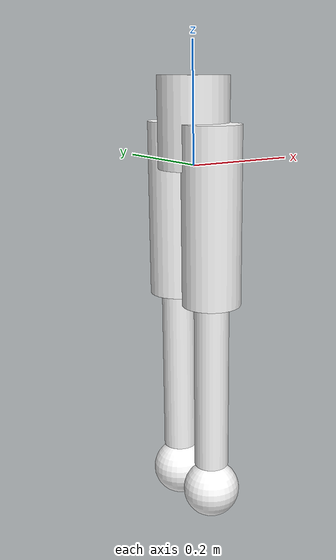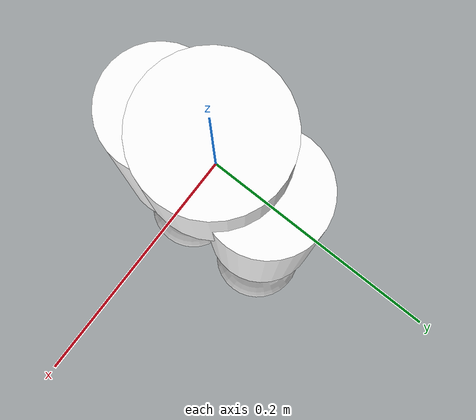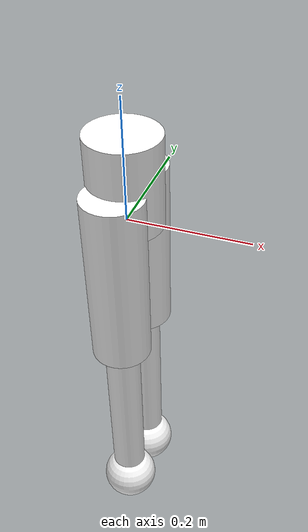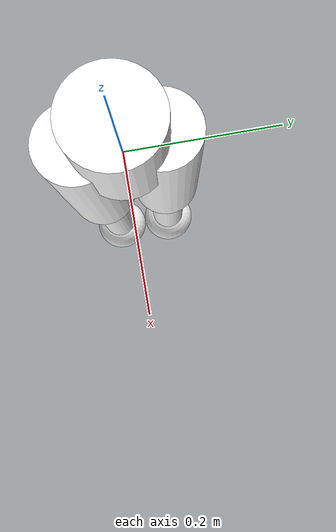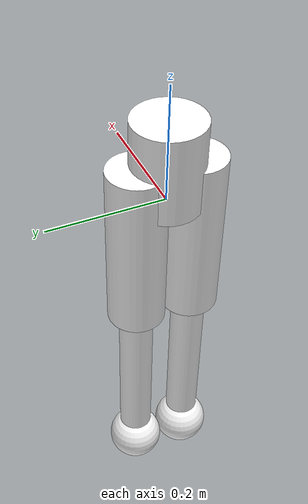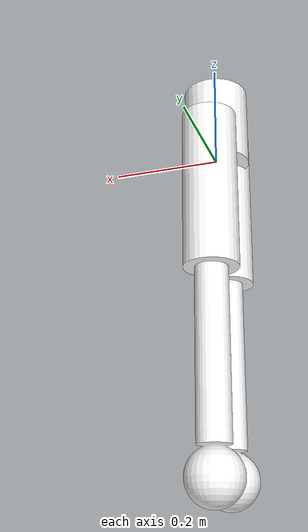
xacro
<?xml version="1.0" ?>
<robot name="moonbot01" xmlns:xacro="http://ros.org/wiki/xacro">

  <!-- include files -->
  <xacro:include filename="$(find moonbot_description)/urdf/yonaka/materials.xacro"/>
  <xacro:include filename="$(find moonbot_description)/urdf/yonaka/moonbot01_leg_macro.xacro"/>

  <link name="world"/>

  <joint name="world_to_f_left_base" type="fixed">
    <origin xyz="0 0 0" rpy="0 0 0"/>
    <parent link="world"/>
    <child link="f_left_leg_base_link"/>
  </joint>

  <xacro:moonbot01_leg prefix="f_left_"/>

  <joint name="world_to_f_right_base" type="fixed">
    <origin xyz="0 0 0" rpy="0 0 0"/>
    <parent link="world"/>
    <child link="f_right_leg_base_link"/>
  </joint>

  <xacro:moonbot01_leg prefix="f_right_"/>

  <joint name="world_to_b_left_base" type="fixed">
    <origin xyz="0 0 0" rpy="0 0 0"/>
    <parent link="world"/>
    <child link="b_left_leg_base_link"/>
  </joint>

  <xacro:moonbot01_leg prefix="b_left_"/>

  <joint name="world_to_b_right_base" type="fixed">
    <origin xyz="0 0 0" rpy="0 0 0"/>
    <parent link="world"/>
    <child link="b_right_leg_base_link"/>
  </joint>

  <xacro:moonbot01_leg prefix="b_right_"/>

</robot>

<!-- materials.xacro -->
<robot name="moonbot01" xmlns:xacro="http://ros.org/wiki/xacro">

  <!-- link rviz colors -->
  <material name="White">
    <color rgba="1 1 1 1"/>
  </material>

  <material name="Black">
    <color rgba="0 0 0 1"/>
  </material>

</robot>

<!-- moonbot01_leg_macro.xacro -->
<robot name="moonbot01" xmlns:xacro="http://ros.org/wiki/xacro">

  <xacro:macro name="moonbot01_leg" params="prefix">

    <!-- include files -->
    <xacro:include filename="$(find moonbot_description)/urdf/yonaka/common.xacro" />
    <xacro:include filename="$(find moonbot_description)/urdf/yonaka/common_gazebo.xacro" />

    <!-- joint limits [rad] -->
    <xacro:property name="j1_lower_limit" value="${radians( -360)}"/>
    <xacro:property name="j1_upper_limit" value="${radians(  360)}"/>
    <xacro:property name="j2_lower_limit" value="${radians(-360)}"/>
    <xacro:property name="j2_upper_limit" value="${radians( 360)}"/>
    <xacro:property name="j3_lower_limit" value="${radians(-360)}"/>
    <xacro:property name="j3_upper_limit" value="${radians( 360)}"/>

    <!-- joint verocity limits [rad/s] -->
    <xacro:property name="j1_velocity_limit" value="${radians(180)}"/>
    <xacro:property name="j2_velocity_limit" value="${radians(180)}"/>
    <xacro:property name="j3_velocity_limit" value="${radians(180)}"/>

    <!-- base link -->
    <link name="${prefix}leg_base_link">
      <inertial>
        <mass value="0.001"/>
        <inertia ixx="0.000000" ixy="0.000000" ixz="0.000000" iyy="0.000000" iyz="0.000000" izz="0.000000"/>
      </inertial>
    </link>

    <!-- joint 1 -->
    <joint name="${prefix}leg_joint1" type="revolute">
      <axis xyz="0 0 1" rpy="0 0 0"/>
      <limit effort="1000.0" lower="${j1_lower_limit}" upper="${j1_upper_limit}" velocity="${j1_velocity_limit}"/>
      <origin xyz="0 0 0.07" rpy="0 0 0"/>
      <parent link="${prefix}leg_base_link"/>
      <child link="${prefix}leg_link1"/>
    </joint>
    <!-- link 1 -->
    <xacro:link name="${prefix}leg_link1" material="White" mesh="F_L_CROTCH_Y_LINK.STL" mass="0.215675" ixx="0.000785" ixy="0.000000" ixz="0.000000" iyy="0.000419" iyz="0.000005" izz="0.000700"/>

    <!-- joint 2 -->
    <joint name="${prefix}leg_joint2" type="revolute">
      <axis xyz="0 1 0" rpy="0 0 0"/>
      <limit effort="1000.0" lower="${j2_lower_limit}" upper="${j2_upper_limit}" velocity="${j2_velocity_limit}"/>
      <xacro:if value="${prefix == 'f_left_'}">
        <origin xyz="0.0 0.05 -0.0" rpy="0 0 0"/>
      </xacro:if>
      <xacro:if value="${prefix == 'f_right_'}">
        <origin xyz="0.0 -0.05 -0.0" rpy="0 0 0"/>
      </xacro:if>
      <xacro:if value="${prefix == 'b_right_'}">
        <origin xyz="0.0 -0.05 -0.0" rpy="0 0 0"/>
      </xacro:if>
      <xacro:if value="${prefix == 'b_left_'}">
        <origin xyz="0.0 0.05 -0.0" rpy="0 0 0"/>
      </xacro:if>
      <parent link="${prefix}leg_link1"/>
      <child link="${prefix}leg_link2"/>
    </joint>

    <!-- link 2 -->
    <xacro:link name="${prefix}leg_link2" material="White" mesh="F_L_CROTCH_P_LINK.STL" mass="0.318353" ixx="0.007936" ixy="0.000000" ixz="0.000000" iyy="0.007995" iyz="-0.000167" izz="0.000285"/>

    <!-- joint 3 -->
    <joint name="${prefix}leg_joint3" type="revolute">
      <axis xyz="0 1 0" rpy="0 0 0"/>
      <limit effort="1000.0" lower="${j3_lower_limit}" upper="${j3_upper_limit}" velocity="${j3_velocity_limit}"/>
      <origin xyz="0.0 0 -0.30" rpy="0 0 0"/>
      <parent link="${prefix}leg_link2"/>
      <child link="${prefix}leg_link3"/>
    </joint>

    <!-- link 3 -->
    <xacro:link name="${prefix}leg_link3" material="White" mesh="F_L_KNEE_P_LINK.STL" mass="0.086899" ixx="0.000118" ixy="0.000000" ixz="0.000000" iyy="0.000127" iyz="0.000006" izz="0.000079"/>

  </xacro:macro>

</robot>

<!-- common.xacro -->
<robot name="moonbot01" xmlns:xacro="http://ros.org/wiki/xacro">

  <xacro:macro name="link" params="name material mesh mass ixx ixy ixz iyy iyz izz">
    <link name="${name}">
      <visual>
        <material name="${material}"/>
        <geometry>
          <mesh filename="package://moonbot_description/meshesY_old/${mesh}" scale="0.001 0.001 0.001"/>
        </geometry>
      </visual>
      <collision>
        <geometry>
          <mesh filename="package://moonbot_description/meshesY_old/${mesh}" scale="0.001 0.001 0.001"/>
        </geometry>
      </collision>
      <inertial>
        <mass value="${mass}"/>
        <inertia ixx="${ixx}" ixy="${ixy}" ixz="${ixz}" iyy="${iyy}" iyz="${iyz}" izz="${izz}"/>
      </inertial>
    </link>
  </xacro:macro>

</robot>
